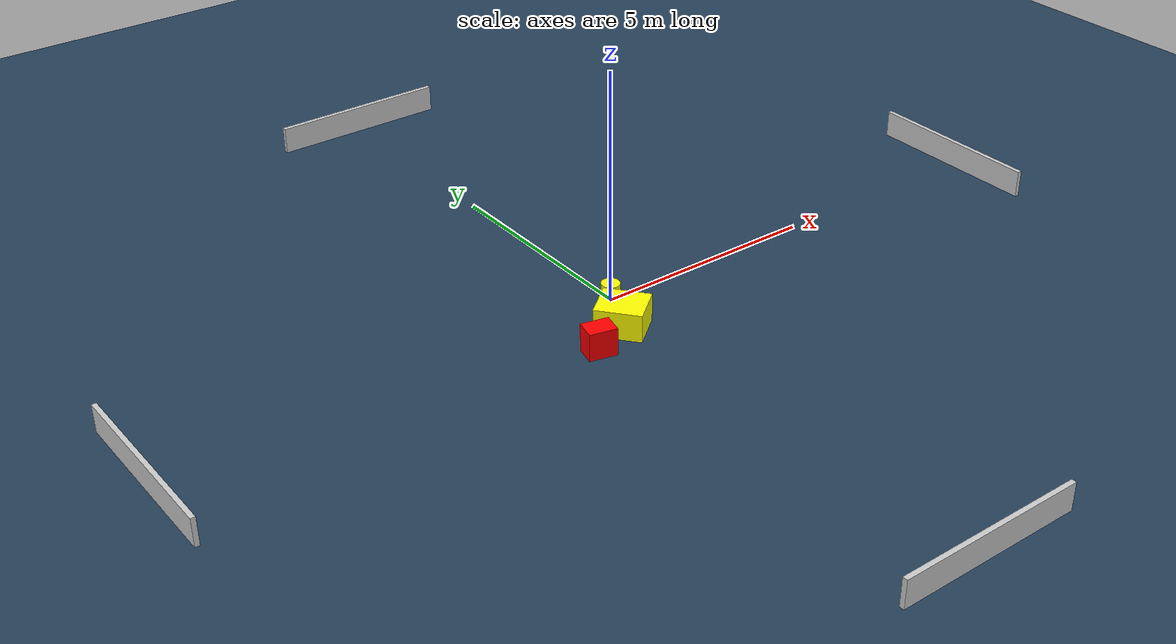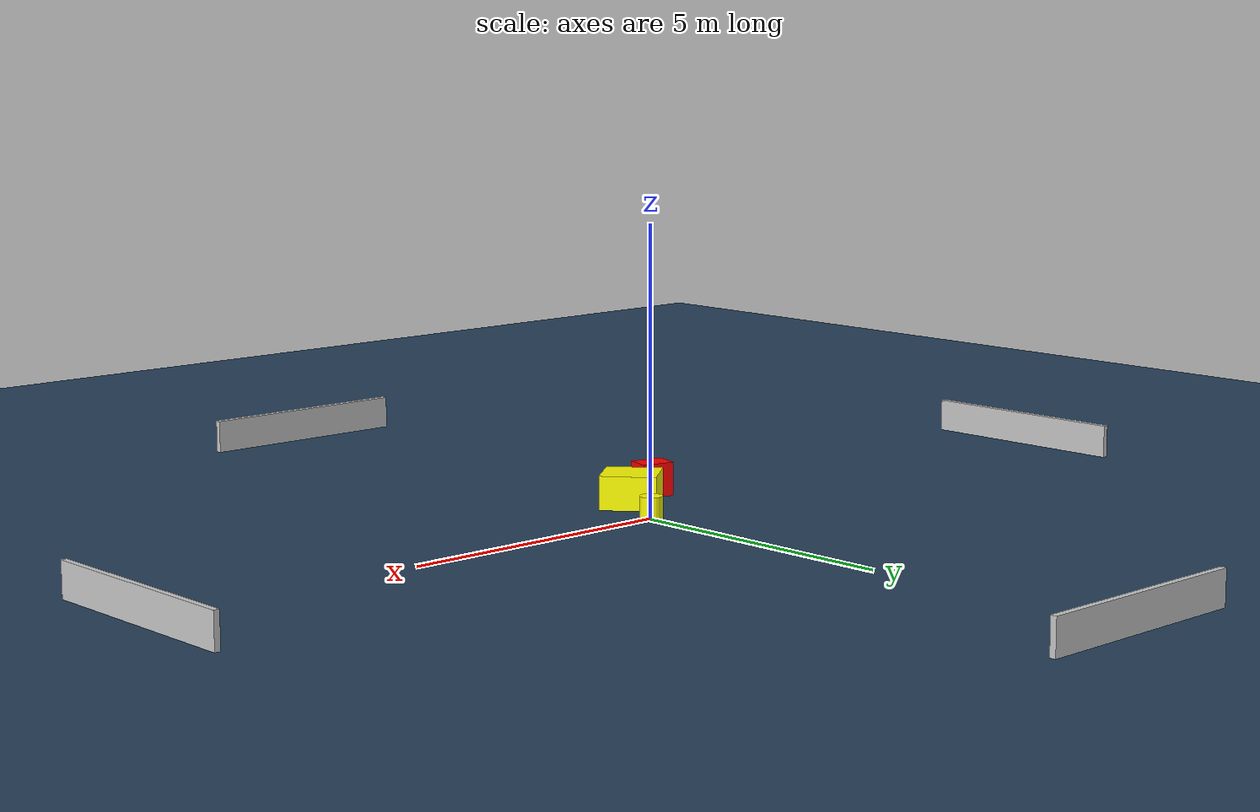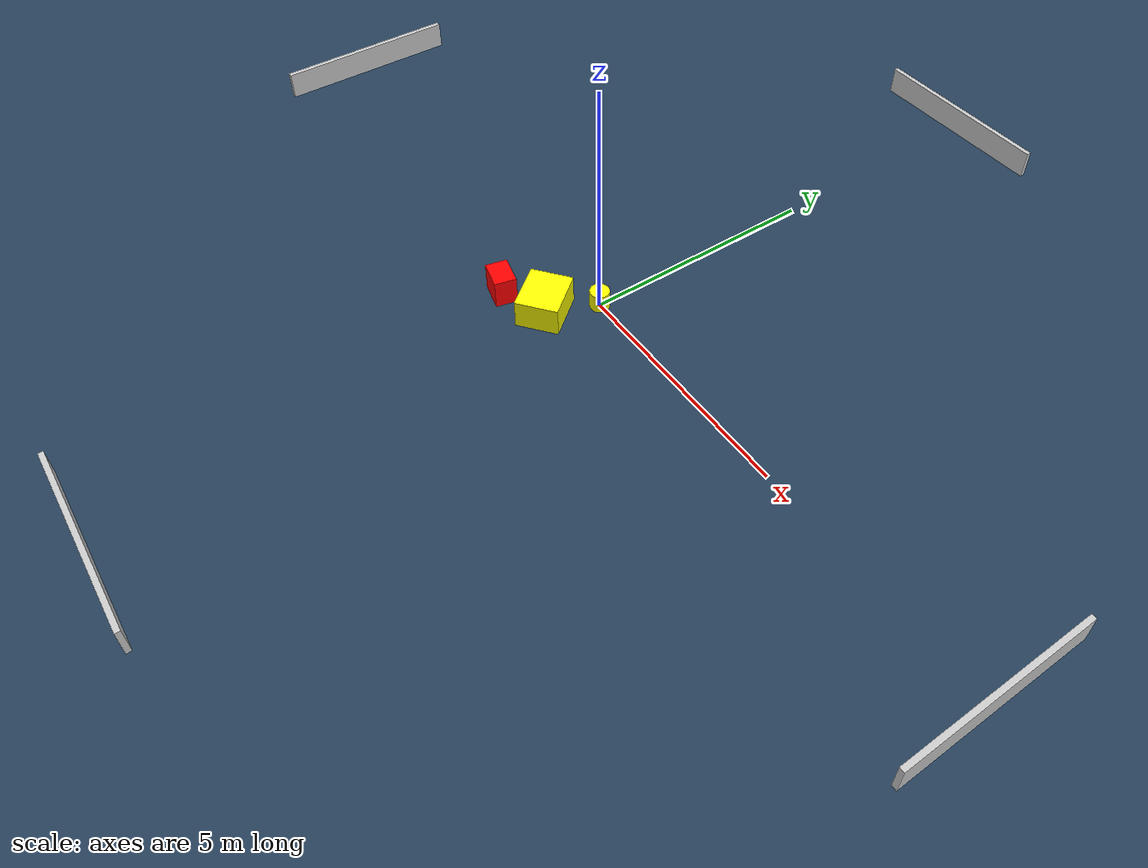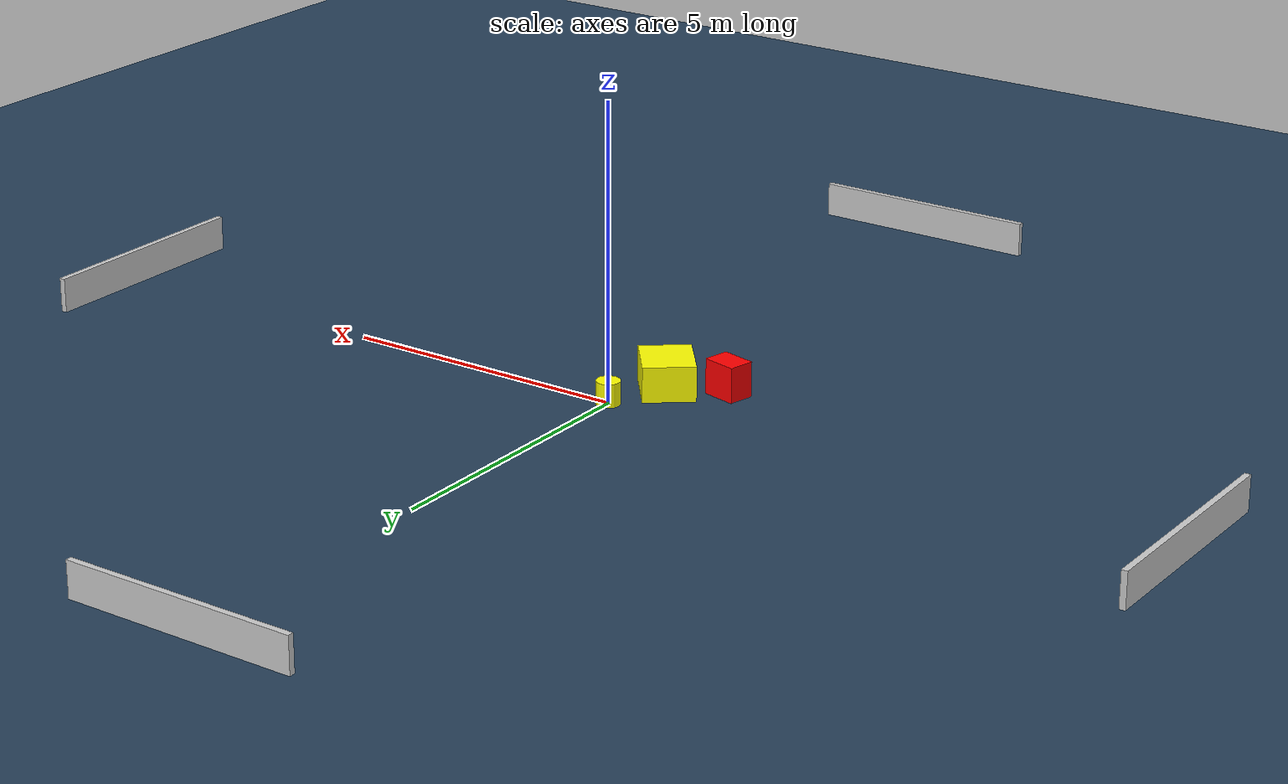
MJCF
<?xml version="1.0" ?>
<mujoco model="generated_environment">
  <option timestep="0.01" integrator="RK4" cone="elliptic"/>
  <default>
    <geom density="1"/>
  </default>
  <asset>
    <texture builtin="gradient" height="3072" name="skybox" rgb1="0.3 0.5 0.7" rgb2="0 0 0" type="skybox" width="512"/>
    <texture builtin="checker" height="300" name="groundplane" rgb1="0.2 0.3 0.4" rgb2="0.1 0.2 0.3" type="2d" width="300"/>
    <material name="groundplane" reflectance="0.2" texrepeat="5 5" texture="groundplane"/>
  </asset>
  <worldbody>
    <light dir="0 0 -1" directional="true" pos="0 0 1.5"/>
    <geom condim="3" friction="0.5 0.005 0.001" material="groundplane" name="floor" pos="0 0 0" size="0 0 0.05" type="plane"/>
    <body name="walls">
      <geom name="wall_1" condim="4" pos="-10.0 0.0 0.3" rgba="0.800000011920929 0.800000011920929 0.800000011920929 1.0" size="0.05 2.0 0.3" type="box"/>
      <geom name="wall_2" condim="4" pos="10.0 0.0 0.3" rgba="0.800000011920929 0.800000011920929 0.800000011920929 1.0" size="0.05 2.0 0.3" type="box"/>
      <geom name="wall_3" condim="4" pos="0.0 -10.0 0.3" rgba="0.800000011920929 0.800000011920929 0.800000011920929 1.0" size="2.0 0.05 0.3" type="box"/>
      <geom name="wall_4" condim="4" pos="0.0 10.0 0.3" rgba="0.800000011920929 0.800000011920929 0.800000011920929 1.0" size="2.0 0.05 0.3" type="box"/>
    </body>
    <body name="robot">
      <joint name="joint_x" type="slide" pos="0 0 0" axis="1 0 0"/>
      <joint name="joint_y" type="slide" pos="0 0 0" axis="0 1 0"/>
      <geom name="robot" type="cylinder" pos="0.0 0.0 0.2" size="0.2 0.2 0.0" mass="5.0" friction="1.0 0.005 0.0001" condim="4" rgba="1.0 1.0 0.0 1.0"/>
    </body>
    <body name="obstacle_1_movable">
      <geom name="obstacle_1_movable" condim="4" pos="-0.45532663809087454 -0.9823383894378958 0.3" euler="0 0 128.6859722093721" friction="0.0 0.005 0.001" rgba="1.0 1.0 0.0 1.0" size="0.4928474668091587 0.4344907586040381 0.3" type="box" mass="0.1"/>
      <joint type="free"/>
    </body>
    <body name="obstacle_2_static">
      <geom name="obstacle_2_static" condim="4" pos="-1.3572702690874672 -1.403929430841161 0.3" euler="0 0 346.76853012490744" friction="0.0 0.005 0.001" rgba="1.0 0.0 0.0 1.0" size="0.29611800701602353 0.22298710571778546 0.3" type="box"/>
    </body>
  </worldbody>
  <actuator>
    <motor name="actuator_x" joint="joint_x" gear="1" ctrlrange="-1 1"/>
    <motor name="actuator_y" joint="joint_y" gear="1" ctrlrange="-1 1"/>
  </actuator>
</mujoco>
